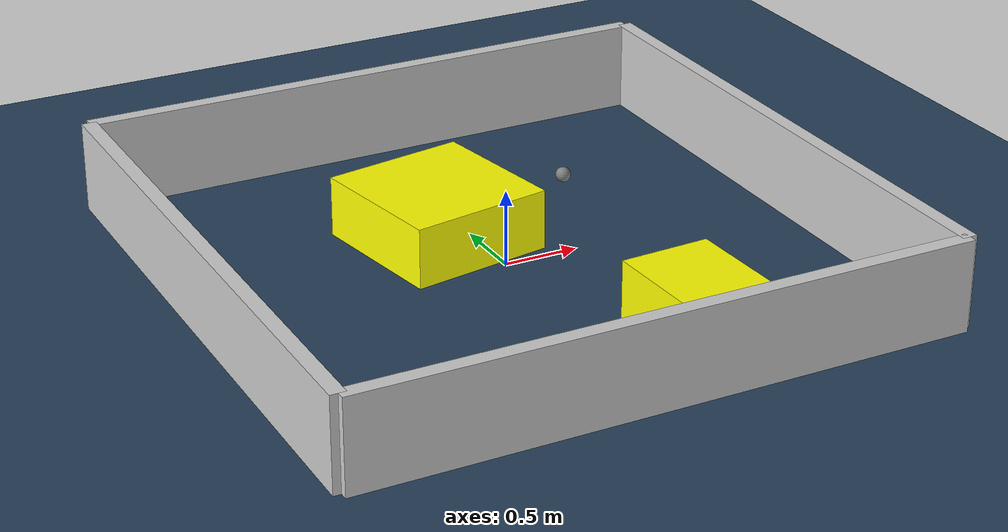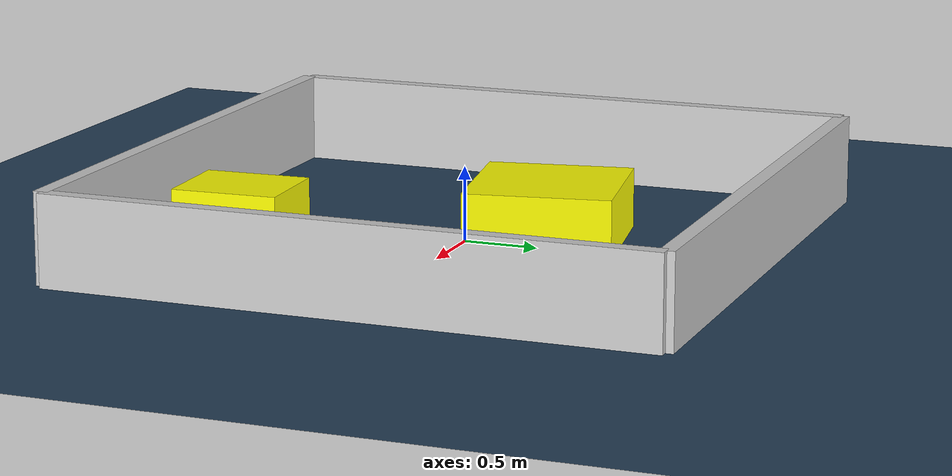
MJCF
<?xml version="1.0" ?>
<mujoco model="generated_environment">
  <option timestep="0.01" integrator="RK4" cone="elliptic"/>
  <default>
    <geom density="1"/>
  </default>
  <asset>
    <texture builtin="gradient" height="3072" rgb1="0.3 0.5 0.7" rgb2="0 0 0" type="skybox" width="512"/>
    <texture builtin="checker" height="300" mark="edge" markrgb="0.8 0.8 0.8" name="groundplane" rgb1="0.2 0.3 0.4" rgb2="0.1 0.2 0.3" type="2d" width="300"/>
    <material name="groundplane" reflectance="0.2" texrepeat="5 5" texture="groundplane" texuniform="true"/>
    <material name="robot" rgba="0.0 1.0 0.0 1"/>
  </asset>
  <worldbody>
    <light dir="0 0 -1" directional="true" pos="0 0 1.5"/>
    <geom condim="4" friction="1.0 0.005 0.001" material="groundplane" name="floor" size="0 0 0.05" type="plane"/>
    <body name="walls">
      <geom name="wall_1" condim="4" pos="-2.0 0.0 0.3" rgba="0.800000011920929 0.800000011920929 0.800000011920929 1.0" size="0.05 2.0 0.3" type="box"/>
      <geom name="wall_2" condim="4" pos="2.0 0.0 0.3" rgba="0.800000011920929 0.800000011920929 0.800000011920929 1.0" size="0.05 2.0 0.3" type="box"/>
      <geom name="wall_3" condim="4" pos="0.0 -2.0 0.3" rgba="0.800000011920929 0.800000011920929 0.800000011920929 1.0" size="2.0 0.05 0.3" type="box"/>
      <geom name="wall_4" condim="4" pos="0.0 2.0 0.3" rgba="0.800000011920929 0.800000011920929 0.800000011920929 1.0" size="2.0 0.05 0.3" type="box"/>
    </body>
    <body name="robot">
      <joint name="joint_x" type="slide" pos="0 0 0" axis="1 0 0"/>
      <joint name="joint_y" type="slide" pos="0 0 0" axis="0 1 0"/>
      <geom name="robot" type="sphere" pos="0.7669224718694103 0.658978081791119 0.2" size="0.05" mass="5." friction="1.0 0.005 0.0001" condim="4"/>
      <site name="sensor_ball"/>
    </body>
    <body name="obstacle_1_movable">
      <geom name="obstacle_1_movable" condim="4" pos="-0.22868071839501214 0.49933339119807174 0.2" euler="0 0 99.66807617738179" friction="1.0 0.005 0.001" rgba="1 1 0 1" size="0.4880498535508661 0.4816382394984302 0.2" type="box" mass="0.1"/>
      <joint type="free"/>
    </body>
    <body name="obstacle_2_movable">
      <geom name="obstacle_2_movable" condim="4" pos="0.5723133867887493 -1.3336424950238848 0.2" euler="0 0 2.554975297404143" friction="1.0 0.005 0.001" rgba="1 1 0 1" size="0.29780614080345297 0.35798586386164216 0.2" type="box" mass="0.1"/>
      <joint type="free"/>
    </body>
  </worldbody>
  <actuator>
    <motor name="actuator_x" joint="joint_x" gear="1" ctrlrange="-1 1"/>
    <motor name="actuator_y" joint="joint_y" gear="1" ctrlrange="-1 1"/>
  </actuator>
</mujoco>
